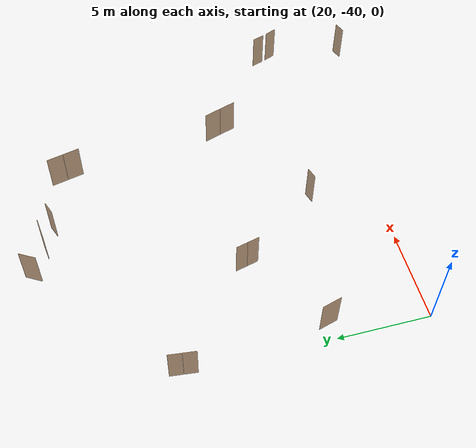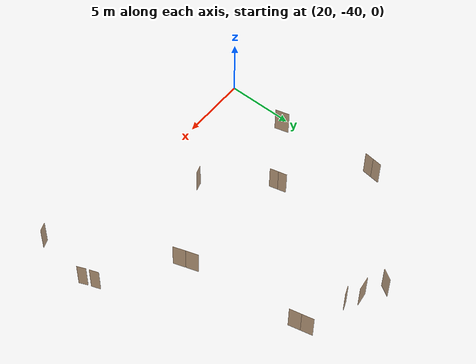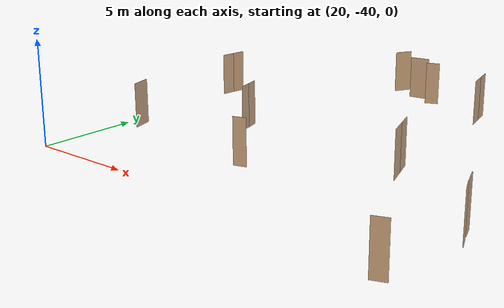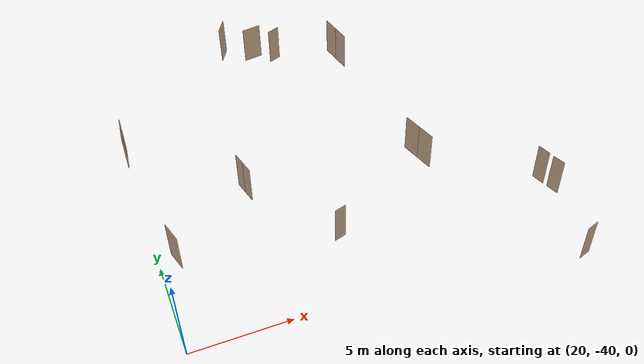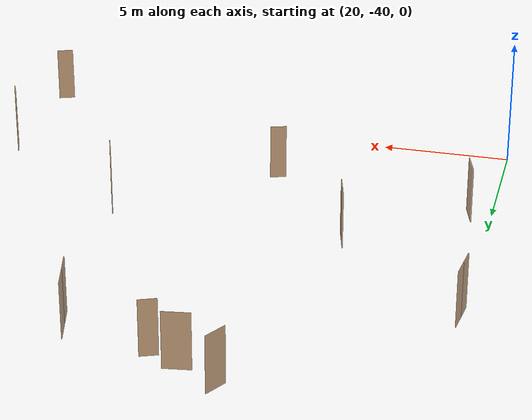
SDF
<sdf version="1.7">
 <world name="world">
  <model name="D21">
   <pose>39.9399 -37.3749 0 0 0 -1.17372</pose>
   <link name="right">
    <pose>0 0 1.11 0 -0 0</pose>
    <visual name="right_visual">
     <geometry><box><size>0.679785 0.03 2.2</size></box></geometry>
     <material><ambient>0.5 0.25 0 0.6</ambient><diffuse>0.5 0.25 0 0.6</diffuse></material>
    </visual>
    <collision name="right_collision">
     <geometry><box><size>0.679785 0.03 2.2</size></box></geometry>
     <surface><contact><collide_bitmask>2</collide_bitmask></contact></surface>
    </collision>
    <inertial>
     <mass>50</mass>
     <inertia><ixx>20.1704</ixx><iyy>22.0921</iyy><izz>1.9292</izz><ixy>0</ixy><ixz>0</ixz><iyz>0</iyz></inertia>
    </inertial>
   </link>
   <joint name="right_joint" type="revolute">
    <parent>world</parent>
    <child>right</child>
    <axis>
     <xyz>0 0 1</xyz>
     <limit><lower>0</lower><upper>1.57</upper></limit>
     <dynamics><spring_reference>0</spring_reference><spring_stiffness>0</spring_stiffness></dynamics>
    </axis>
    <pose>0.344893 0 0 0 -0 0</pose>
   </joint>
   <plugin name="door_D21" filename="libdoor.so">
    <v_max_door>0.5</v_max_door>
    <a_max_door>0.3</a_max_door>
    <a_nom_door>0.15</a_nom_door>
    <dx_min_door>0.01</dx_min_door>
    <f_max_door>500.0</f_max_door>
    <door name="D21" type="SwingDoor" left_joint_name="empty_joint" right_joint_name="right_joint"/>
   </plugin>
  </model>
  <model name="D22">
   <pose>39.6095 -36.5068 0 0 -0 -1.22329</pose>
   <link name="right">
    <pose>0 0 1.11 0 -0 0</pose>
    <visual name="right_visual">
     <geometry><box><size>0.697065 0.03 2.2</size></box></geometry>
     <material><ambient>0.5 0.25 0 0.6</ambient><diffuse>0.5 0.25 0 0.6</diffuse></material>
    </visual>
    <collision name="right_collision">
     <geometry><box><size>0.697065 0.03 2.2</size></box></geometry>
     <surface><contact><collide_bitmask>2</collide_bitmask></contact></surface>
    </collision>
    <inertial>
     <mass>50</mass>
     <inertia><ixx>20.1704</ixx><iyy>22.1912</iyy><izz>2.02833</izz><ixy>0</ixy><ixz>0</ixz><iyz>0</iyz></inertia>
    </inertial>
   </link>
   <joint name="right_joint" type="revolute">
    <parent>world</parent>
    <child>right</child>
    <axis>
     <xyz>0 0 1</xyz>
     <limit><lower>0</lower><upper>1.57</upper></limit>
     <dynamics><spring_reference>0</spring_reference><spring_stiffness>0</spring_stiffness></dynamics>
    </axis>
    <pose>0.353532 0 0 0 -0 0</pose>
   </joint>
   <plugin name="door_D22" filename="libdoor.so">
    <v_max_door>0.5</v_max_door>
    <a_max_door>0.3</a_max_door>
    <a_nom_door>0.15</a_nom_door>
    <dx_min_door>0.01</dx_min_door>
    <f_max_door>500.0</f_max_door>
    <door name="D22" type="SwingDoor" left_joint_name="empty_joint" right_joint_name="right_joint"/>
   </plugin>
  </model>
  <model name="D35">
   <pose>27.2522 -20.905 0 -0 -0 -2.0991</pose>
   <link name="right">
    <pose>0 0 1.11 0 -0 0</pose>
    <visual name="right_visual">
     <geometry><box><size>0.926974 0.03 2.2</size></box></geometry>
     <material><ambient>0.5 0.25 0 0.6</ambient><diffuse>0.5 0.25 0 0.6</diffuse></material>
    </visual>
    <collision name="right_collision">
     <geometry><box><size>0.926974 0.03 2.2</size></box></geometry>
     <surface><contact><collide_bitmask>2</collide_bitmask></contact></surface>
    </collision>
    <inertial>
     <mass>50</mass>
     <inertia><ixx>20.1704</ixx><iyy>23.747</iyy><izz>3.58409</izz><ixy>0</ixy><ixz>0</ixz><iyz>0</iyz></inertia>
    </inertial>
   </link>
   <joint name="right_joint" type="revolute">
    <parent>world</parent>
    <child>right</child>
    <axis>
     <xyz>0 0 1</xyz>
     <limit><lower>0</lower><upper>1.57</upper></limit>
     <dynamics><spring_reference>0</spring_reference><spring_stiffness>0</spring_stiffness></dynamics>
    </axis>
    <pose>0.468487 0 0 0 -0 0</pose>
   </joint>
   <plugin name="door_D35" filename="libdoor.so">
    <v_max_door>0.5</v_max_door>
    <a_max_door>0.3</a_max_door>
    <a_nom_door>0.15</a_nom_door>
    <dx_min_door>0.01</dx_min_door>
    <f_max_door>500.0</f_max_door>
    <door name="D35" type="SwingDoor" left_joint_name="empty_joint" right_joint_name="right_joint"/>
   </plugin>
  </model>
  <model name="D37">
   <pose>28.8017 -21.7376 0 0 -0 0.134395</pose>
   <link name="right">
    <pose>0 0 1.11 0 -0 0</pose>
    <visual name="right_visual">
     <geometry><box><size>1.02647 0.03 2.2</size></box></geometry>
     <material><ambient>0.5 0.25 0 0.6</ambient><diffuse>0.5 0.25 0 0.6</diffuse></material>
    </visual>
    <collision name="right_collision">
     <geometry><box><size>1.02647 0.03 2.2</size></box></geometry>
     <surface><contact><collide_bitmask>2</collide_bitmask></contact></surface>
    </collision>
    <inertial>
     <mass>50</mass>
     <inertia><ixx>20.1704</ixx><iyy>24.5569</iyy><izz>4.39395</izz><ixy>0</ixy><ixz>0</ixz><iyz>0</iyz></inertia>
    </inertial>
   </link>
   <joint name="right_joint" type="revolute">
    <parent>world</parent>
    <child>right</child>
    <axis>
     <xyz>0 0 -1</xyz>
     <limit><lower>0</lower><upper>1.57</upper></limit>
     <dynamics><spring_reference>0</spring_reference><spring_stiffness>0</spring_stiffness></dynamics>
    </axis>
    <pose>0.518237 0 0 0 -0 0</pose>
   </joint>
   <plugin name="door_D37" filename="libdoor.so">
    <v_max_door>0.5</v_max_door>
    <a_max_door>0.3</a_max_door>
    <a_nom_door>0.15</a_nom_door>
    <dx_min_door>0.01</dx_min_door>
    <f_max_door>500.0</f_max_door>
    <door name="D37" type="SwingDoor" left_joint_name="empty_joint" right_joint_name="right_joint"/>
   </plugin>
  </model>
  <model name="D38">
   <pose>29.9445 -22.3332 0 0 0 -2.76978</pose>
   <link name="right">
    <pose>0 0 1.11 0 -0 0</pose>
    <visual name="right_visual">
     <geometry><box><size>0.684938 0.03 2.2</size></box></geometry>
     <material><ambient>0.5 0.25 0 0.6</ambient><diffuse>0.5 0.25 0 0.6</diffuse></material>
    </visual>
    <collision name="right_collision">
     <geometry><box><size>0.684938 0.03 2.2</size></box></geometry>
     <surface><contact><collide_bitmask>2</collide_bitmask></contact></surface>
    </collision>
    <inertial>
     <mass>50</mass>
     <inertia><ixx>20.1704</ixx><iyy>22.1214</iyy><izz>1.9585</izz><ixy>0</ixy><ixz>0</ixz><iyz>0</iyz></inertia>
    </inertial>
   </link>
   <joint name="right_joint" type="revolute">
    <parent>world</parent>
    <child>right</child>
    <axis>
     <xyz>0 0 1</xyz>
     <limit><lower>0</lower><upper>1.57</upper></limit>
     <dynamics><spring_reference>0</spring_reference><spring_stiffness>0</spring_stiffness></dynamics>
    </axis>
    <pose>0.347469 0 0 0 -0 0</pose>
   </joint>
   <plugin name="door_D38" filename="libdoor.so">
    <v_max_door>0.5</v_max_door>
    <a_max_door>0.3</a_max_door>
    <a_nom_door>0.15</a_nom_door>
    <dx_min_door>0.01</dx_min_door>
    <f_max_door>500.0</f_max_door>
    <door name="D38" type="SwingDoor" left_joint_name="empty_joint" right_joint_name="right_joint"/>
   </plugin>
  </model>
  <model name="D41">
   <pose>20.8549 -34.8204 0 0 0 -1.29248</pose>
   <link name="right">
    <pose>0 0 1.11 0 -0 0</pose>
    <visual name="right_visual">
     <geometry><box><size>1.06495 0.03 2.2</size></box></geometry>
     <material><ambient>0.5 0.25 0 0.6</ambient><diffuse>0.5 0.25 0 0.6</diffuse></material>
    </visual>
    <collision name="right_collision">
     <geometry><box><size>1.06495 0.03 2.2</size></box></geometry>
     <surface><contact><collide_bitmask>2</collide_bitmask></contact></surface>
    </collision>
    <inertial>
     <mass>50</mass>
     <inertia><ixx>20.1704</ixx><iyy>24.8922</iyy><izz>4.72928</izz><ixy>0</ixy><ixz>0</ixz><iyz>0</iyz></inertia>
    </inertial>
   </link>
   <joint name="right_joint" type="revolute">
    <parent>world</parent>
    <child>right</child>
    <axis>
     <xyz>0 0 -1</xyz>
     <limit><lower>0</lower><upper>1.57</upper></limit>
     <dynamics><spring_reference>0</spring_reference><spring_stiffness>0</spring_stiffness></dynamics>
    </axis>
    <pose>0.537477 0 0 0 -0 0</pose>
   </joint>
   <plugin name="door_D41" filename="libdoor.so">
    <v_max_door>0.5</v_max_door>
    <a_max_door>0.3</a_max_door>
    <a_nom_door>0.15</a_nom_door>
    <dx_min_door>0.01</dx_min_door>
    <f_max_door>500.0</f_max_door>
    <door name="D41" type="SwingDoor" left_joint_name="empty_joint" right_joint_name="right_joint"/>
   </plugin>
  </model>
  <model name="D42">
   <pose>28.6688 -36.3474 0 0 -0 -2.85205</pose>
   <link name="right">
    <pose>0 0 1.11 0 -0 0</pose>
    <visual name="right_visual">
     <geometry><box><size>0.625709 0.03 2.2</size></box></geometry>
     <material><ambient>0.5 0.25 0 0.6</ambient><diffuse>0.5 0.25 0 0.6</diffuse></material>
    </visual>
    <collision name="right_collision">
     <geometry><box><size>0.625709 0.03 2.2</size></box></geometry>
     <surface><contact><collide_bitmask>2</collide_bitmask></contact></surface>
    </collision>
    <inertial>
     <mass>50</mass>
     <inertia><ixx>20.1704</ixx><iyy>21.798</iyy><izz>1.63505</izz><ixy>0</ixy><ixz>0</ixz><iyz>0</iyz></inertia>
    </inertial>
   </link>
   <joint name="right_joint" type="revolute">
    <parent>world</parent>
    <child>right</child>
    <axis>
     <xyz>0 0 1</xyz>
     <limit><lower>0</lower><upper>1.57</upper></limit>
     <dynamics><spring_reference>0</spring_reference><spring_stiffness>0</spring_stiffness></dynamics>
    </axis>
    <pose>0.317855 0 0 0 -0 0</pose>
   </joint>
   <plugin name="door_D42" filename="libdoor.so">
    <v_max_door>0.5</v_max_door>
    <a_max_door>0.3</a_max_door>
    <a_nom_door>0.15</a_nom_door>
    <dx_min_door>0.01</dx_min_door>
    <f_max_door>500.0</f_max_door>
    <door name="D42" type="SwingDoor" left_joint_name="empty_joint" right_joint_name="right_joint"/>
   </plugin>
  </model>
  <model name="D65">
   <pose>39.2163 -41.6357 0 0 0 -2.79951</pose>
   <link name="right">
    <pose>0 0 1.11 0 -0 0</pose>
    <visual name="right_visual">
     <geometry><box><size>0.647671 0.03 2.2</size></box></geometry>
     <material><ambient>0.5 0.25 0 0.6</ambient><diffuse>0.5 0.25 0 0.6</diffuse></material>
    </visual>
    <collision name="right_collision">
     <geometry><box><size>0.647671 0.03 2.2</size></box></geometry>
     <surface><contact><collide_bitmask>2</collide_bitmask></contact></surface>
    </collision>
    <inertial>
     <mass>50</mass>
     <inertia><ixx>20.1704</ixx><iyy>21.9145</iyy><izz>1.75158</izz><ixy>0</ixy><ixz>0</ixz><iyz>0</iyz></inertia>
    </inertial>
   </link>
   <joint name="right_joint" type="revolute">
    <parent>world</parent>
    <child>right</child>
    <axis>
     <xyz>0 0 1</xyz>
     <limit><lower>0</lower><upper>1.57</upper></limit>
     <dynamics><spring_reference>0</spring_reference><spring_stiffness>0</spring_stiffness></dynamics>
    </axis>
    <pose>0.328836 0 0 0 -0 0</pose>
   </joint>
   <plugin name="door_D65" filename="libdoor.so">
    <v_max_door>0.5</v_max_door>
    <a_max_door>0.3</a_max_door>
    <a_nom_door>0.15</a_nom_door>
    <dx_min_door>0.01</dx_min_door>
    <f_max_door>500.0</f_max_door>
    <door name="D65" type="SwingDoor" left_joint_name="empty_joint" right_joint_name="right_joint"/>
   </plugin>
  </model>
  <model name="DH2">
   <pose>34.4428 -32.7311 0 0 -0 1.89236</pose>
   <link name="right">
    <pose>0.478874 0 1.11 0 -0 0</pose>
    <visual name="right_visual">
     <geometry><box><size>0.947748 0.03 2.2</size></box></geometry>
     <material><ambient>0.5 0.25 0 0.6</ambient><diffuse>0.5 0.25 0 0.6</diffuse></material>
    </visual>
    <collision name="right_collision">
     <geometry><box><size>0.947748 0.03 2.2</size></box></geometry>
     <surface><contact><collide_bitmask>2</collide_bitmask></contact></surface>
    </collision>
    <inertial>
     <mass>50</mass>
     <inertia><ixx>20.1704</ixx><iyy>23.9093</iyy><izz>3.74636</izz><ixy>0</ixy><ixz>0</ixz><iyz>0</iyz></inertia>
    </inertial>
   </link>
   <joint name="right_joint" type="revolute">
    <parent>world</parent>
    <child>right</child>
    <axis>
     <xyz>0 0 -1</xyz>
     <limit><lower>0</lower><upper>1.57</upper></limit>
     <dynamics><spring_reference>0</spring_reference><spring_stiffness>0</spring_stiffness></dynamics>
    </axis>
    <pose>0.478874 0 0 0 -0 0</pose>
   </joint>
   <link name="left">
    <pose>-0.478874 0 1.11 0 -0 0</pose>
    <visual name="left_visual">
     <geometry><box><size>0.947748 0.03 2.2</size></box></geometry>
     <material><ambient>0.5 0.25 0 0.6</ambient><diffuse>0.5 0.25 0 0.6</diffuse></material>
    </visual>
    <collision name="left_collision">
     <geometry><box><size>0.947748 0.03 2.2</size></box></geometry>
     <surface><contact><collide_bitmask>2</collide_bitmask></contact></surface>
    </collision>
    <inertial>
     <mass>50</mass>
     <inertia><ixx>20.1704</ixx><iyy>23.9093</iyy><izz>3.74636</izz><ixy>0</ixy><ixz>0</ixz><iyz>0</iyz></inertia>
    </inertial>
   </link>
   <joint name="left_joint" type="revolute">
    <parent>world</parent>
    <child>left</child>
    <axis>
     <xyz>0 0 -1</xyz>
     <limit><lower>-1.57</lower><upper>0</upper></limit>
     <dynamics><spring_reference>0</spring_reference><spring_stiffness>0</spring_stiffness></dynamics>
    </axis>
    <pose>-0.478874 0 0 0 -0 0</pose>
   </joint>
   <plugin name="door_DH2" filename="libdoor.so">
    <v_max_door>0.5</v_max_door>
    <a_max_door>0.3</a_max_door>
    <a_nom_door>0.15</a_nom_door>
    <dx_min_door>0.01</dx_min_door>
    <f_max_door>500.0</f_max_door>
    <door name="DH2" type="DoubleSwingDoor" left_joint_name="left_joint" right_joint_name="right_joint"/>
   </plugin>
  </model>
  <model name="DH4">
   <pose>33.3402 -23.5658 0 0 -0 1.79804</pose>
   <link name="right">
    <pose>0.460935 0 1.11 0 -0 0</pose>
    <visual name="right_visual">
     <geometry><box><size>0.911871 0.03 2.2</size></box></geometry>
     <material><ambient>0.5 0.25 0 0.6</ambient><diffuse>0.5 0.25 0 0.6</diffuse></material>
    </visual>
    <collision name="right_collision">
     <geometry><box><size>0.911871 0.03 2.2</size></box></geometry>
     <surface><contact><collide_bitmask>2</collide_bitmask></contact></surface>
    </collision>
    <inertial>
     <mass>50</mass>
     <inertia><ixx>20.1704</ixx><iyy>23.6313</iyy><izz>3.46837</izz><ixy>0</ixy><ixz>0</ixz><iyz>0</iyz></inertia>
    </inertial>
   </link>
   <joint name="right_joint" type="revolute">
    <parent>world</parent>
    <child>right</child>
    <axis>
     <xyz>0 0 -1</xyz>
     <limit><lower>0</lower><upper>1.57</upper></limit>
     <dynamics><spring_reference>0</spring_reference><spring_stiffness>0</spring_stiffness></dynamics>
    </axis>
    <pose>0.460935 0 0 0 -0 0</pose>
   </joint>
   <link name="left">
    <pose>-0.460935 0 1.11 0 -0 0</pose>
    <visual name="left_visual">
     <geometry><box><size>0.911871 0.03 2.2</size></box></geometry>
     <material><ambient>0.5 0.25 0 0.6</ambient><diffuse>0.5 0.25 0 0.6</diffuse></material>
    </visual>
    <collision name="left_collision">
     <geometry><box><size>0.911871 0.03 2.2</size></box></geometry>
     <surface><contact><collide_bitmask>2</collide_bitmask></contact></surface>
    </collision>
    <inertial>
     <mass>50</mass>
     <inertia><ixx>20.1704</ixx><iyy>23.6313</iyy><izz>3.46837</izz><ixy>0</ixy><ixz>0</ixz><iyz>0</iyz></inertia>
    </inertial>
   </link>
   <joint name="left_joint" type="revolute">
    <parent>world</parent>
    <child>left</child>
    <axis>
     <xyz>0 0 -1</xyz>
     <limit><lower>-1.57</lower><upper>0</upper></limit>
     <dynamics><spring_reference>0</spring_reference><spring_stiffness>0</spring_stiffness></dynamics>
    </axis>
    <pose>-0.460935 0 0 0 -0 0</pose>
   </joint>
   <plugin name="door_DH4" filename="libdoor.so">
    <v_max_door>0.5</v_max_door>
    <a_max_door>0.3</a_max_door>
    <a_nom_door>0.15</a_nom_door>
    <dx_min_door>0.01</dx_min_door>
    <f_max_door>500.0</f_max_door>
    <door name="DH4" type="DoubleSwingDoor" left_joint_name="left_joint" right_joint_name="right_joint"/>
   </plugin>
  </model>
  <model name="DH7">
   <pose>20.0813 -27.229 0 0 0 -1.68321</pose>
   <link name="right">
    <pose>0.357271 0 1.11 0 -0 0</pose>
    <visual name="right_visual">
     <geometry><box><size>0.704543 0.03 2.2</size></box></geometry>
     <material><ambient>0.5 0.25 0 0.6</ambient><diffuse>0.5 0.25 0 0.6</diffuse></material>
    </visual>
    <collision name="right_collision">
     <geometry><box><size>0.704543 0.03 2.2</size></box></geometry>
     <surface><contact><collide_bitmask>2</collide_bitmask></contact></surface>
    </collision>
    <inertial>
     <mass>50</mass>
     <inertia><ixx>20.1704</ixx><iyy>22.2349</iyy><izz>2.072</izz><ixy>0</ixy><ixz>0</ixz><iyz>0</iyz></inertia>
    </inertial>
   </link>
   <joint name="right_joint" type="revolute">
    <parent>world</parent>
    <child>right</child>
    <axis>
     <xyz>0 0 -1</xyz>
     <limit><lower>0</lower><upper>1.57</upper></limit>
     <dynamics><spring_reference>0</spring_reference><spring_stiffness>0</spring_stiffness></dynamics>
    </axis>
    <pose>0.357271 0 0 0 -0 0</pose>
   </joint>
   <link name="left">
    <pose>-0.357271 0 1.11 0 -0 0</pose>
    <visual name="left_visual">
     <geometry><box><size>0.704543 0.03 2.2</size></box></geometry>
     <material><ambient>0.5 0.25 0 0.6</ambient><diffuse>0.5 0.25 0 0.6</diffuse></material>
    </visual>
    <collision name="left_collision">
     <geometry><box><size>0.704543 0.03 2.2</size></box></geometry>
     <surface><contact><collide_bitmask>2</collide_bitmask></contact></surface>
    </collision>
    <inertial>
     <mass>50</mass>
     <inertia><ixx>20.1704</ixx><iyy>22.2349</iyy><izz>2.072</izz><ixy>0</ixy><ixz>0</ixz><iyz>0</iyz></inertia>
    </inertial>
   </link>
   <joint name="left_joint" type="revolute">
    <parent>world</parent>
    <child>left</child>
    <axis>
     <xyz>0 0 -1</xyz>
     <limit><lower>-1.57</lower><upper>0</upper></limit>
     <dynamics><spring_reference>0</spring_reference><spring_stiffness>0</spring_stiffness></dynamics>
    </axis>
    <pose>-0.357271 0 0 0 -0 0</pose>
   </joint>
   <plugin name="door_DH7" filename="libdoor.so">
    <v_max_door>0.5</v_max_door>
    <a_max_door>0.3</a_max_door>
    <a_nom_door>0.15</a_nom_door>
    <dx_min_door>0.01</dx_min_door>
    <f_max_door>500.0</f_max_door>
    <door name="DH7" type="DoubleSwingDoor" left_joint_name="left_joint" right_joint_name="right_joint"/>
   </plugin>
  </model>
  <model name="DH8">
   <pose>25.2203 -31.8157 0 0 -0 1.81582</pose>
   <link name="right">
    <pose>0.327032 0 1.11 0 -0 0</pose>
    <visual name="right_visual">
     <geometry><box><size>0.644064 0.03 2.2</size></box></geometry>
     <material><ambient>0.5 0.25 0 0.6</ambient><diffuse>0.5 0.25 0 0.6</diffuse></material>
    </visual>
    <collision name="right_collision">
     <geometry><box><size>0.644064 0.03 2.2</size></box></geometry>
     <surface><contact><collide_bitmask>2</collide_bitmask></contact></surface>
    </collision>
    <inertial>
     <mass>50</mass>
     <inertia><ixx>20.1704</ixx><iyy>21.8951</iyy><izz>1.73216</izz><ixy>0</ixy><ixz>0</ixz><iyz>0</iyz></inertia>
    </inertial>
   </link>
   <joint name="right_joint" type="revolute">
    <parent>world</parent>
    <child>right</child>
    <axis>
     <xyz>0 0 -1</xyz>
     <limit><lower>0</lower><upper>1.57</upper></limit>
     <dynamics><spring_reference>0</spring_reference><spring_stiffness>0</spring_stiffness></dynamics>
    </axis>
    <pose>0.327032 0 0 0 -0 0</pose>
   </joint>
   <link name="left">
    <pose>-0.327032 0 1.11 0 -0 0</pose>
    <visual name="left_visual">
     <geometry><box><size>0.644064 0.03 2.2</size></box></geometry>
     <material><ambient>0.5 0.25 0 0.6</ambient><diffuse>0.5 0.25 0 0.6</diffuse></material>
    </visual>
    <collision name="left_collision">
     <geometry><box><size>0.644064 0.03 2.2</size></box></geometry>
     <surface><contact><collide_bitmask>2</collide_bitmask></contact></surface>
    </collision>
    <inertial>
     <mass>50</mass>
     <inertia><ixx>20.1704</ixx><iyy>21.8951</iyy><izz>1.73216</izz><ixy>0</ixy><ixz>0</ixz><iyz>0</iyz></inertia>
    </inertial>
   </link>
   <joint name="left_joint" type="revolute">
    <parent>world</parent>
    <child>left</child>
    <axis>
     <xyz>0 0 -1</xyz>
     <limit><lower>-1.57</lower><upper>0</upper></limit>
     <dynamics><spring_reference>0</spring_reference><spring_stiffness>0</spring_stiffness></dynamics>
    </axis>
    <pose>-0.327032 0 0 0 -0 0</pose>
   </joint>
   <plugin name="door_DH8" filename="libdoor.so">
    <v_max_door>0.5</v_max_door>
    <a_max_door>0.3</a_max_door>
    <a_nom_door>0.15</a_nom_door>
    <dx_min_door>0.01</dx_min_door>
    <f_max_door>500.0</f_max_door>
    <door name="DH8" type="DoubleSwingDoor" left_joint_name="left_joint" right_joint_name="right_joint"/>
   </plugin>
  </model>
 </world>
</sdf>
